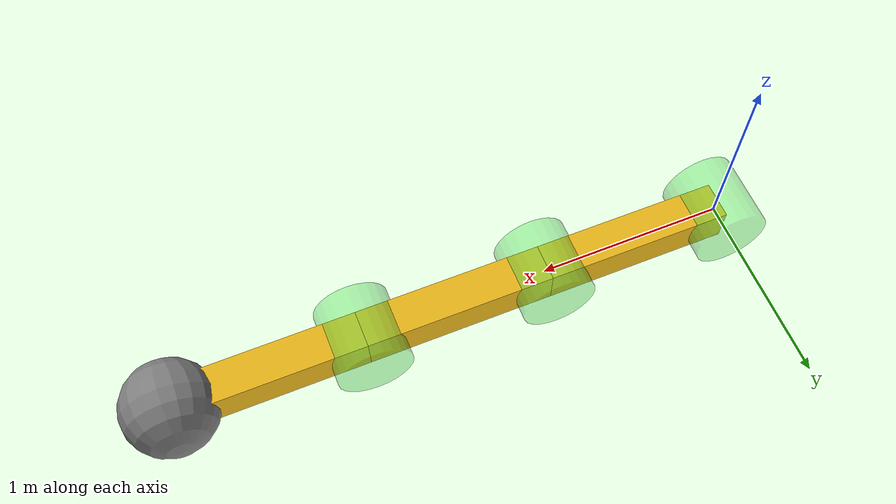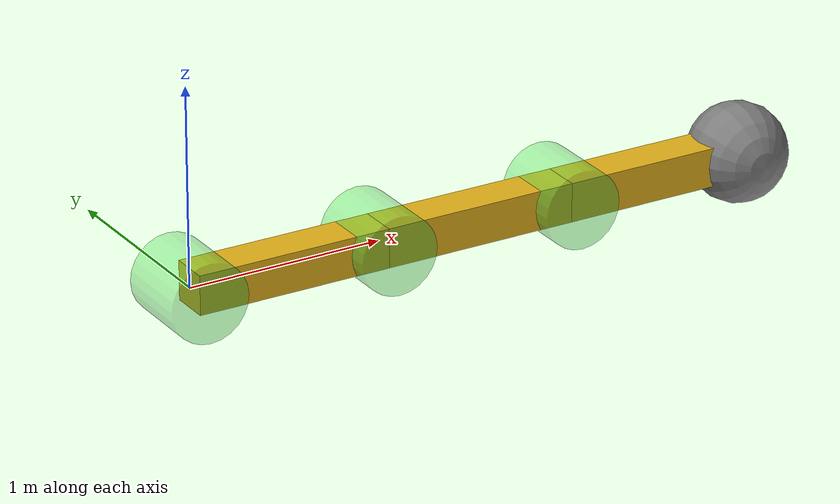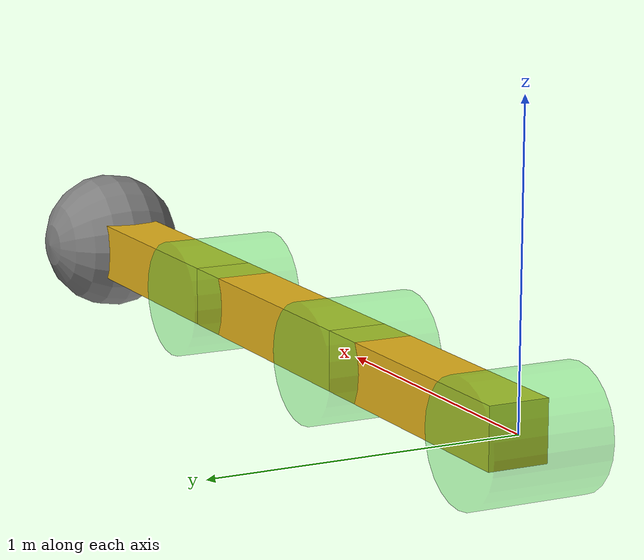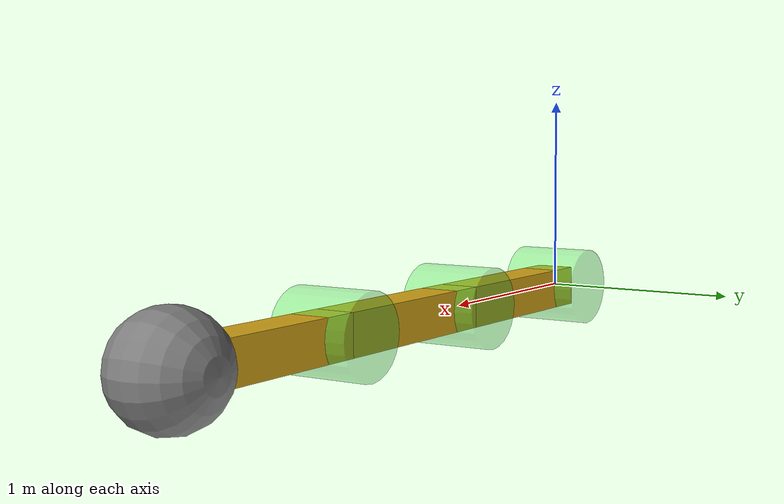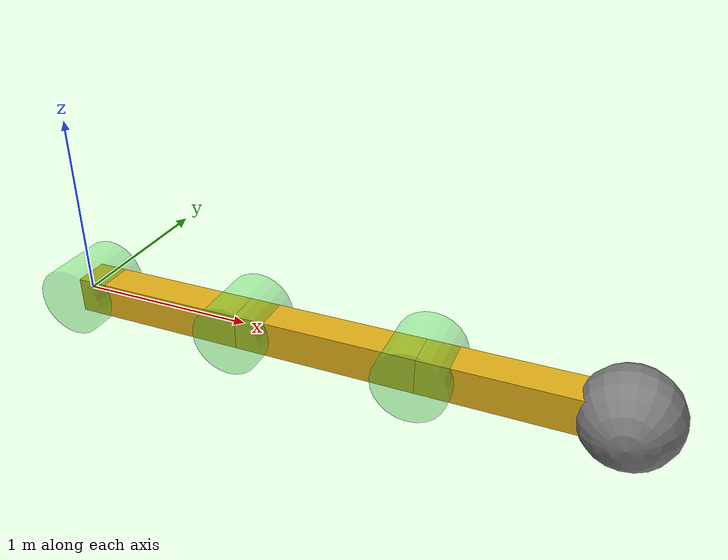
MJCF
<mujoco model="3-joint-planar-manipulator">

    <actuator>
        <motor gear="1000" joint="hinge_1" name="motor_1" ctrlrange="-1 1" ctrllimited="true"/>
        <motor gear="1000" joint="hinge_2" name="motor_2" ctrlrange="-1 1" ctrllimited="true"/>
        <motor gear="1000" joint="hinge_3" name="motor_3" ctrlrange="-1 1" ctrllimited="true"/>
    </actuator>

    <worldbody>
        <light pos="0 0 1"/>
        <body name="link_1" pos="0 0 0" euler="90 0 0">
            <joint name="hinge_1" axis="0 0 1"/>
            <geom type="box" size=".5 .1 .1" pos="0.5 0 0" rgba=".9 .7 .1 1"/>
            <geom type="cylinder" size=".2 .2" rgba=".3 .9 .3 .4"/>
            <body name="link_2" pos="1 0 0">
                <joint name="hinge_2" axis="0 0 1"/>
                <geom type="box" size=".5 .1 .1" pos="0.5 0 0" rgba=".9 .7 .1 1"/>
                <geom type="cylinder" size=".2 .2" rgba=".3 .9 .3 .4"/>
                <body name="link_3" pos="1 0 0">
                    <joint name="hinge_3" axis="0 0 1"/>
                    <geom type="box" size=".5 .1 .1" pos="0.5 0 0" rgba=".9 .7 .1 1"/>
                    <geom type="cylinder" size=".2 .2" rgba=".3 .9 .3 .4"/>
                    <body name="end_effector" pos="1 0 0">
                        <geom type="sphere" size=".25" mass="0.05"/>
                    </body>
                </body>
            </body>
        </body>
    </worldbody>

    <contact>
        <exclude body1="link_1" body2="link_2"/>
        <exclude body1="link_1" body2="link_3"/>
        <exclude body1="link_1" body2="end_effector"/>
        <exclude body1="link_2" body2="link_3"/>
        <exclude body1="link_2" body2="end_effector"/>
        <exclude body1="link_3" body2="end_effector"/>
    </contact>

</mujoco>
